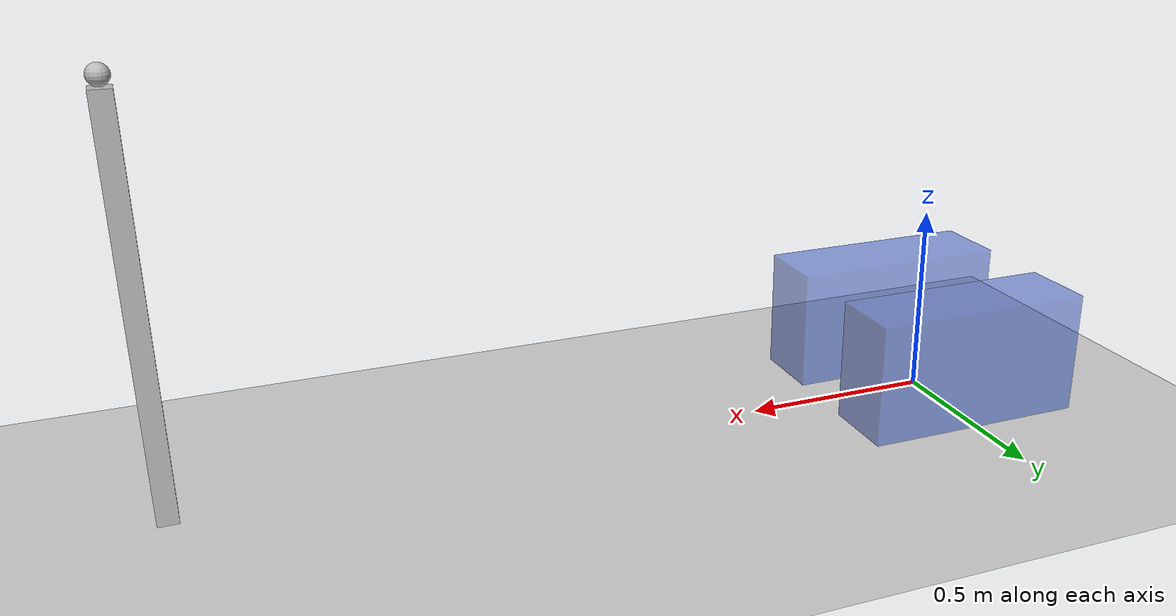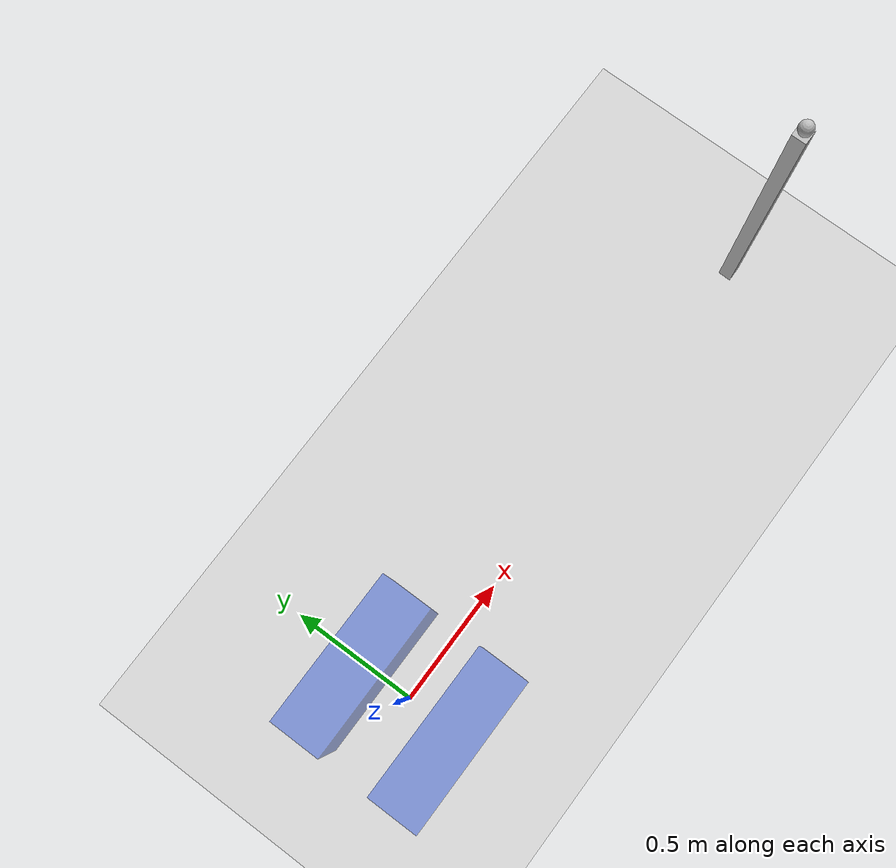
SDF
<?xml version="1.0" ?>
<sdf version="1.5">
  <world name="default">
    <!-- A global light source -->
    <include>
      <uri>model://sun</uri>
    </include>
    <!-- A ground plane -->
    <include>
      <uri>model://ground_plane</uri>
    </include>
    <include>
      <uri>model://uav_stand</uri>
    </include>
    <include>
      <uri>model://ball_and_stand</uri>
    </include>
    <physics name='default_physics' default='0' type='ode'>
      <gravity>0 0 -9.80665</gravity>
      <ode>
        <solver>
          <type>quick</type>
          <iters>100</iters>
          <sor>1.3</sor>
          <use_dynamic_moi_rescaling>0</use_dynamic_moi_rescaling>
        </solver>
        <constraints>
          <cfm>0</cfm>
          <erp>0.2</erp>
          <contact_max_correcting_vel>100</contact_max_correcting_vel>
          <contact_surface_layer>0.001</contact_surface_layer>
        </constraints>
      </ode>
      <max_step_size>0.002</max_step_size>
      <real_time_factor>1</real_time_factor>
      <real_time_update_rate>500</real_time_update_rate>
      <magnetic_field>6e-06 2.3e-05 -4.2e-05</magnetic_field>
    </physics>
  </world>
</sdf>

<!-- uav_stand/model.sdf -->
<sdf version='1.6'>
  <model name='uav_stand'>
  <static>true</static>

    <link name='base_link'>
      <pose>0 0 0.1625 0 0 0</pose>
      <collision name='collision_left'>
        <pose>0 0.2 0 0 0 0</pose>
        <geometry>
          <box>
            <size>0.6 0.2 0.325</size>
          </box>
        </geometry>
      </collision>

      <collision name='collision_base_right'>
        <pose>0 -0.2 0 0 0 0</pose>
        <geometry>
          <box>
            <size>0.6 0.2 0.325</size>
          </box>
        </geometry>
      </collision>

	  <visual name='visual_left'>
        <pose>0 0.2 0 0 0 0</pose>
        <geometry>
          <box>
            <size>0.6 0.2 0.325</size>
          </box>
        </geometry>
        <material>
          <lighting>1</lighting>
			  <script>
			    <name>Gazebo/BlueTransparent</name>
				<uri>file://media/materials/scripts/gazebo.material</uri>
			  </script>
        </material>
      </visual>

	  <visual name='visual_right'>
        <pose>0 -0.2 0 0 0 0</pose>
        <geometry>
          <box>
            <size>0.6 0.2 0.325</size>
          </box>
        </geometry>
        <material>
          <lighting>1</lighting>
			  <script>
			    <name>Gazebo/BlueTransparent</name>
				<uri>file://media/materials/scripts/gazebo.material</uri>
			  </script>
        </material>
      </visual>
	</link>
  </model>
</sdf>

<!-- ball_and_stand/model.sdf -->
<sdf version='1.6'>
    <model name="ball_and_stand">
	<static>true</static>
      <link name="ball_stand">
        <pose>2.0 0 0.5 0 0 0</pose>

        <collision name="ball_stand_collision">
          <geometry>
			  <box>
				<size>0.05 0.05 1.0</size>
			  </box>
          </geometry>
        </collision>

        <visual name="ball_stand_visual">
          <geometry>
			  <box>
				<size>0.05 0.05 1.0</size>
			  </box>
          </geometry>
        </visual>
      </link>

      <model name="ball">
	    <pose>2.0 0 1.025 0 0 0</pose>
		  <link name="ball">

			  <inertial>
				<mass>0.05</mass>
				<inertia>
				  <ixx>0.0001</ixx>
				  <ixy>0</ixy>
				  <ixz>0</ixz>
				  <iyy>0.0001</iyy>
				  <iyz>0</iyz>
				  <izz>0.0001</izz>
				</inertia>
			  </inertial>

			<collision name="ball_collision">
			  <geometry>
				<sphere>
					<radius>0.025</radius>
				</sphere>
			  </geometry>
			</collision>

			<visual name="ball_visual">
			  <geometry>
				<sphere>
					<radius>0.025</radius>
				</sphere>
			  </geometry>
			</visual>
        </link>
	  </model>
    </model>
</sdf>
